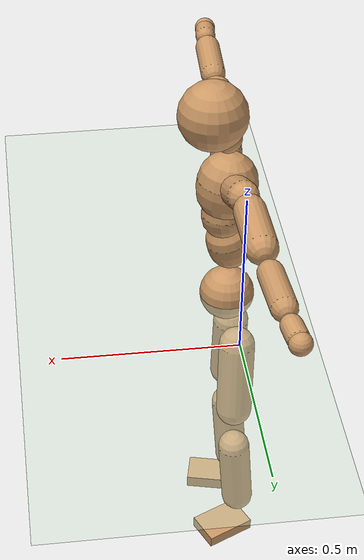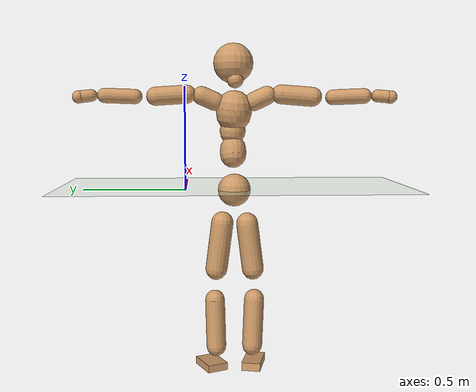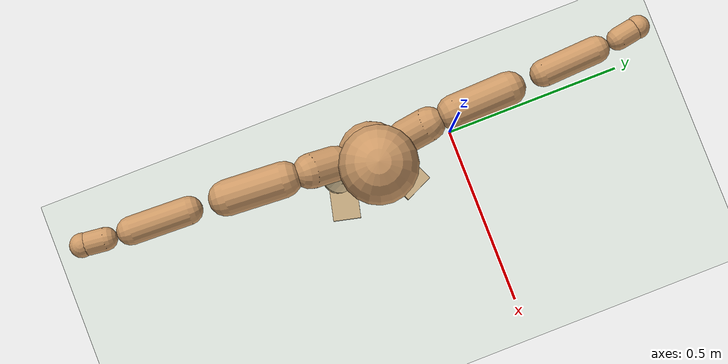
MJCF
<mujoco model="humanoid">
  <compiler coordinate="local" angle="radian"/>
  <default>
    <joint damping="0.0" armature="0.01" stiffness="0.0" limited="true"/>
    <geom conaffinity="1" condim="3" contype="7" margin="0.001" rgba="0.8 0.6 .4 1"/>
  </default>
  <asset>
    <texture type="skybox" builtin="gradient" rgb1=".4 .5 .6" rgb2="0 0 0" width="100" height="100"/>
    <texture builtin="flat" height="1278" mark="cross" markrgb="1 1 1" name="texgeom" random="0.01" rgb1="0.8 0.6 0.4" rgb2="0.8 0.6 0.4" type="cube" width="127"/>
    <texture builtin="checker" height="100" name="texplane" rgb1="0 0 0" rgb2="0.8 0.8 0.8" type="2d" width="100"/>
    <material name="MatPlane" reflectance="0.5" shininess="1" specular="1" texrepeat="60 60" texture="texplane"/>
    <material name="geom" texture="texgeom" texuniform="true"/>
  </asset>
  <worldbody>
    <light cutoff="100" diffuse="1 1 1" dir="-0 0 -1.3" directional="true" exponent="1" pos="0 0 1.3" specular=".1 .1 .1"/>
    <geom conaffinity="1" condim="3" name="floor" pos="0 0 0" rgba="0.8 0.9 0.8 1" size="100 100 .2" type="plane" material="MatPlane"/>
    <body name="Pelvis" pos="0.0003 -0.2376 -0.0015">
      <freejoint name="Pelvis"/>
      <geom type="sphere" contype="1" conaffinity="1" density="500" size="0.0800" pos="0.0000 0.0000 0.0000" name="Pelvis"/>
      <body name="L_Hip" pos="-0.0281 0.0502 -0.0795">
        <joint name="L_Hip_x" type="hinge" pos="0 0 0" axis="1 0 0" stiffness="800" damping="80" armature="0.02" range="-180.0000 180.0000"/>
        <joint name="L_Hip_y" type="hinge" pos="0 0 0" axis="0 1 0" stiffness="800" damping="80" armature="0.02" range="-180.0000 180.0000"/>
        <joint name="L_Hip_z" type="hinge" pos="0 0 0" axis="0 0 1" stiffness="800" damping="80" armature="0.02" range="-180.0000 180.0000"/>
        <geom type="capsule" contype="1" conaffinity="1" density="500" fromto="0.0021 0.0098 -0.0780 0.0082 0.0391 -0.3120" size="0.0538" name="L_Hip"/>
        <body name="L_Knee" pos="0.0103 0.0489 -0.39">
          <joint name="L_Knee_x" type="hinge" pos="0 0 0" axis="1 0 0" stiffness="800" damping="80" armature="0.02" range="-180.0000 180.0000"/>
          <joint name="L_Knee_y" type="hinge" pos="0 0 0" axis="0 1 0" stiffness="800" damping="80" armature="0.02" range="-180.0000 180.0000"/>
          <joint name="L_Knee_z" type="hinge" pos="0 0 0" axis="0 0 1" stiffness="800" damping="80" armature="0.02" range="-180.0000 180.0000"/>
          <geom type="capsule" contype="1" conaffinity="1" density="500" fromto="-0.0064 -0.0020 -0.0785 -0.0255 -0.0079 -0.3139" size="0.0483" name="L_Knee"/>
          <body name="L_Ankle" pos="-0.0319 -0.0099 -0.3924">
            <joint name="L_Ankle_x" type="hinge" pos="0 0 0" axis="1 0 0" stiffness="800" damping="80" armature="0.02" range="-180.0000 180.0000"/>
            <joint name="L_Ankle_y" type="hinge" pos="0 0 0" axis="0 1 0" stiffness="800" damping="80" armature="0.02" range="-180.0000 180.0000"/>
            <joint name="L_Ankle_z" type="hinge" pos="0 0 0" axis="0 0 1" stiffness="800" damping="80" armature="0.02" range="-180.0000 180.0000"/>
            <geom type="box" contype="1" conaffinity="1" density="500" pos="0.0551 0.0251 -0.0288" size="0.0764 0.0524 0.0182" quat="0.9773 0.0000 0.0000 0.2119" name="L_Ankle"/>
            <body name="L_Toe" pos="0.1102 0.0501 -0.0575">
              <joint name="L_Toe_x" type="hinge" pos="0 0 0" axis="1 0 0" stiffness="500" damping="50" armature="0.02" range="-180.0000 180.0000"/>
              <joint name="L_Toe_y" type="hinge" pos="0 0 0" axis="0 1 0" stiffness="500" damping="50" armature="0.02" range="-180.0000 180.0000"/>
              <joint name="L_Toe_z" type="hinge" pos="0 0 0" axis="0 0 1" stiffness="500" damping="50" armature="0.02" range="-180.0000 180.0000"/>
              <geom type="box" contype="1" conaffinity="1" density="500" pos="0.0000 0.0000 0.0316" size="0.001 0.0024 0.0011" quat="0.9764 0.0000 0.0000 0.2158" name="L_Toe"/>
            </body>
          </body>
        </body>
      </body>
      <body name="R_Hip" pos="-0.027 -0.0522 -0.0865">
        <joint name="R_Hip_x" type="hinge" pos="0 0 0" axis="1 0 0" stiffness="800" damping="80" armature="0.02" range="-180.0000 180.0000"/>
        <joint name="R_Hip_y" type="hinge" pos="0 0 0" axis="0 1 0" stiffness="800" damping="80" armature="0.02" range="-180.0000 180.0000"/>
        <joint name="R_Hip_z" type="hinge" pos="0 0 0" axis="0 0 1" stiffness="800" damping="80" armature="0.02" range="-180.0000 180.0000"/>
        <geom type="capsule" contype="1" conaffinity="1" density="500" fromto="-0.0002 -0.0097 -0.0761 -0.0008 -0.0389 -0.3045" size="0.053" name="R_Hip"/>
        <body name="R_Knee" pos="-0.001 -0.0486 -0.3806">
          <joint name="R_Knee_x" type="hinge" pos="0 0 0" axis="1 0 0" stiffness="800" damping="80" armature="0.02" range="-180.0000 180.0000"/>
          <joint name="R_Knee_y" type="hinge" pos="0 0 0" axis="0 1 0" stiffness="800" damping="80" armature="0.02" range="-180.0000 180.0000"/>
          <joint name="R_Knee_z" type="hinge" pos="0 0 0" axis="0 0 1" stiffness="800" damping="80" armature="0.02" range="-180.0000 180.0000"/>
          <geom type="capsule" contype="1" conaffinity="1" density="500" fromto="-0.0059 0.0033 -0.0773 -0.0235 0.0130 -0.3092" size="0.0492" name="R_Knee"/>
          <body name="R_Ankle" pos="-0.0293 0.0163 -0.3865">
            <joint name="R_Ankle_x" type="hinge" pos="0 0 0" axis="1 0 0" stiffness="800" damping="80" armature="0.02" range="-180.0000 180.0000"/>
            <joint name="R_Ankle_y" type="hinge" pos="0 0 0" axis="0 1 0" stiffness="800" damping="80" armature="0.02" range="-180.0000 180.0000"/>
            <joint name="R_Ankle_z" type="hinge" pos="0 0 0" axis="0 0 1" stiffness="800" damping="80" armature="0.02" range="-180.0000 180.0000"/>
            <geom type="box" contype="1" conaffinity="1" density="500" pos="0.0598 -0.0142 -0.0304" size="0.0839 0.0466 0.0203" quat="0.9932 0.0000 0.0000 -0.1167" name="R_Ankle"/>
            <body name="R_Toe" pos="0.1196 -0.0285 -0.0609">
              <joint name="R_Toe_x" type="hinge" pos="0 0 0" axis="1 0 0" stiffness="500" damping="50" armature="0.02" range="-180.0000 180.0000"/>
              <joint name="R_Toe_y" type="hinge" pos="0 0 0" axis="0 1 0" stiffness="500" damping="50" armature="0.02" range="-180.0000 180.0000"/>
              <joint name="R_Toe_z" type="hinge" pos="0 0 0" axis="0 0 1" stiffness="500" damping="50" armature="0.02" range="-180.0000 180.0000"/>
              <geom type="box" contype="1" conaffinity="1" density="500" pos="0.0000 0.0000 0.0332" size="0.0009 0.0022 0.0012" quat="0.9943 0.0000 0.0000 -0.1071" name="R_Toe"/>
            </body>
          </body>
        </body>
      </body>
      <body name="Torso" pos="-0.0169 0.0037 0.1153">
        <joint name="Torso_x" type="hinge" pos="0 0 0" axis="1 0 0" stiffness="1000" damping="100" armature="0.02" range="-180.0000 180.0000"/>
        <joint name="Torso_y" type="hinge" pos="0 0 0" axis="0 1 0" stiffness="1000" damping="100" armature="0.02" range="-180.0000 180.0000"/>
        <joint name="Torso_z" type="hinge" pos="0 0 0" axis="0 0 1" stiffness="1000" damping="100" armature="0.02" range="-180.0000 180.0000"/>
        <geom type="capsule" contype="1" conaffinity="1" density="500" fromto="0.0218 0.0028 0.0872 0.0145 0.0018 0.0581" size="0.0629" name="Torso"/>
        <body name="Spine" pos="0.0363 0.0046 0.1453">
          <joint name="Spine_x" type="hinge" pos="0 0 0" axis="1 0 0" stiffness="1000" damping="100" armature="0.02" range="-180.0000 180.0000"/>
          <joint name="Spine_y" type="hinge" pos="0 0 0" axis="0 1 0" stiffness="1000" damping="100" armature="0.02" range="-180.0000 180.0000"/>
          <joint name="Spine_z" type="hinge" pos="0 0 0" axis="0 0 1" stiffness="1000" damping="100" armature="0.02" range="-180.0000 180.0000"/>
          <geom type="capsule" contype="1" conaffinity="1" density="500" fromto="0.0007 -0.0012 0.0346 0.0005 -0.0008 0.0231" size="0.0625" name="Spine"/>
          <body name="Chest" pos="0.0011 -0.0021 0.0577">
            <joint name="Chest_x" type="hinge" pos="0 0 0" axis="1 0 0" stiffness="1000" damping="100" armature="0.02" range="-180.0000 180.0000"/>
            <joint name="Chest_y" type="hinge" pos="0 0 0" axis="0 1 0" stiffness="1000" damping="100" armature="0.02" range="-180.0000 180.0000"/>
            <joint name="Chest_z" type="hinge" pos="0 0 0" axis="0 0 1" stiffness="1000" damping="100" armature="0.02" range="-180.0000 180.0000"/>
            <geom type="capsule" contype="1" conaffinity="1" density="500" fromto="-0.0108 -0.0054 0.0800 -0.0072 -0.0036 0.0533" size="0.086" name="Chest"/>
            <body name="Neck" pos="-0.0186 -0.0127 0.1956">
              <joint name="Neck_x" type="hinge" pos="0 0 0" axis="1 0 0" stiffness="500" damping="50" armature="0.02" range="-180.0000 180.0000"/>
              <joint name="Neck_y" type="hinge" pos="0 0 0" axis="0 1 0" stiffness="500" damping="50" armature="0.02" range="-180.0000 180.0000"/>
              <joint name="Neck_z" type="hinge" pos="0 0 0" axis="0 0 1" stiffness="500" damping="50" armature="0.02" range="-180.0000 180.0000"/>
              <geom type="capsule" contype="1" conaffinity="1" density="500" fromto="0.0109 0.0018 0.0203 0.0435 0.0072 0.0811" size="0.0402" name="Neck"/>
              <body name="Head" pos="0.0544 0.009 0.1013">
                <joint name="Head_x" type="hinge" pos="0 0 0" axis="1 0 0" stiffness="500" damping="50" armature="0.02" range="-180.0000 180.0000"/>
                <joint name="Head_y" type="hinge" pos="0 0 0" axis="0 1 0" stiffness="500" damping="50" armature="0.02" range="-180.0000 180.0000"/>
                <joint name="Head_z" type="hinge" pos="0 0 0" axis="0 0 1" stiffness="500" damping="50" armature="0.02" range="-180.0000 180.0000"/>
                <geom type="sphere" contype="1" conaffinity="1" density="500" size="0.0973" pos="0.0000 0.0000 0.0000" name="Head"/>
              </body>
            </body>
            <body name="L_Thorax" pos="-0.0161 0.0654 0.1023">
              <joint name="L_Thorax_x" type="hinge" pos="0 0 0" axis="1 0 0" stiffness="500" damping="50" armature="0.02" range="-180.0000 180.0000"/>
              <joint name="L_Thorax_y" type="hinge" pos="0 0 0" axis="0 1 0" stiffness="500" damping="50" armature="0.02" range="-180.0000 180.0000"/>
              <joint name="L_Thorax_z" type="hinge" pos="0 0 0" axis="0 0 1" stiffness="500" damping="50" armature="0.02" range="-180.0000 180.0000"/>
              <geom type="capsule" contype="1" conaffinity="1" density="500" fromto="-0.0024 0.0217 0.0095 -0.0095 0.0869 0.0379" size="0.0441" name="L_Thorax"/>
              <body name="L_Shoulder" pos="-0.0119 0.1086 0.0474">
                <joint name="L_Shoulder_x" type="hinge" pos="0 0 0" axis="1 0 0" stiffness="500" damping="50" armature="0.02" range="-720.0000 720.0000"/>
                <joint name="L_Shoulder_y" type="hinge" pos="0 0 0" axis="0 1 0" stiffness="500" damping="50" armature="0.02" range="-720.0000 720.0000"/>
                <joint name="L_Shoulder_z" type="hinge" pos="0 0 0" axis="0 0 1" stiffness="500" damping="50" armature="0.02" range="-720.0000 720.0000"/>
                <geom type="capsule" contype="1" conaffinity="1" density="500" fromto="-0.0021 0.0495 -0.0034 -0.0082 0.1979 -0.0135" size="0.0441" name="L_Shoulder"/>
                <body name="L_Elbow" pos="-0.0103 0.2474 -0.0169">
                  <joint name="L_Elbow_x" type="hinge" pos="0 0 0" axis="1 0 0" stiffness="500" damping="50" armature="0.02" range="-720.0000 720.0000"/>
                  <joint name="L_Elbow_y" type="hinge" pos="0 0 0" axis="0 1 0" stiffness="500" damping="50" armature="0.02" range="-720.0000 720.0000"/>
                  <joint name="L_Elbow_z" type="hinge" pos="0 0 0" axis="0 0 1" stiffness="500" damping="50" armature="0.02" range="-720.0000 720.0000"/>
                  <geom type="capsule" contype="1" conaffinity="1" density="500" fromto="-0.0025 0.0474 0.0017 -0.0098 0.1898 0.0068" size="0.035" name="L_Elbow"/>
                  <body name="L_Wrist" pos="-0.0123 0.2372 0.0085">
                    <joint name="L_Wrist_x" type="hinge" pos="0 0 0" axis="1 0 0" stiffness="300" damping="30" armature="0.02" range="-180.0000 180.0000"/>
                    <joint name="L_Wrist_y" type="hinge" pos="0 0 0" axis="0 1 0" stiffness="300" damping="30" armature="0.02" range="-180.0000 180.0000"/>
                    <joint name="L_Wrist_z" type="hinge" pos="0 0 0" axis="0 0 1" stiffness="300" damping="30" armature="0.02" range="-180.0000 180.0000"/>
                    <geom type="capsule" contype="1" conaffinity="1" density="500" fromto="-0.0027 0.0147 -0.0018 -0.0106 0.0587 -0.0072" size="0.0289" name="L_Wrist"/>
                    <body name="L_Hand" pos="-0.0133 0.0734 -0.009">
                      <joint name="L_Hand_x" type="hinge" pos="0 0 0" axis="1 0 0" stiffness="300" damping="30" armature="0.02" range="-180.0000 180.0000"/>
                      <joint name="L_Hand_y" type="hinge" pos="0 0 0" axis="0 1 0" stiffness="300" damping="30" armature="0.02" range="-180.0000 180.0000"/>
                      <joint name="L_Hand_z" type="hinge" pos="0 0 0" axis="0 0 1" stiffness="300" damping="30" armature="0.02" range="-180.0000 180.0000"/>
                      <geom type="sphere" contype="1" conaffinity="1" density="500" size="0.0302" pos="0.0000 0.0000 0.0000" name="L_Hand"/>
                    </body>
                  </body>
                </body>
              </body>
            </body>
            <body name="R_Thorax" pos="-0.0195 -0.0798 0.1021">
              <joint name="R_Thorax_x" type="hinge" pos="0 0 0" axis="1 0 0" stiffness="500" damping="50" armature="0.02" range="-180.0000 180.0000"/>
              <joint name="R_Thorax_y" type="hinge" pos="0 0 0" axis="0 1 0" stiffness="500" damping="50" armature="0.02" range="-180.0000 180.0000"/>
              <joint name="R_Thorax_z" type="hinge" pos="0 0 0" axis="0 0 1" stiffness="500" damping="50" armature="0.02" range="-180.0000 180.0000"/>
              <geom type="capsule" contype="1" conaffinity="1" density="500" fromto="-0.0006 -0.0207 0.0096 -0.0025 -0.0830 0.0386" size="0.0453" name="R_Thorax"/>
              <body name="R_Shoulder" pos="-0.0031 -0.1037 0.0482">
                <joint name="R_Shoulder_x" type="hinge" pos="0 0 0" axis="1 0 0" stiffness="500" damping="50" armature="0.02" range="-720.0000 720.0000"/>
                <joint name="R_Shoulder_y" type="hinge" pos="0 0 0" axis="0 1 0" stiffness="500" damping="50" armature="0.02" range="-720.0000 720.0000"/>
                <joint name="R_Shoulder_z" type="hinge" pos="0 0 0" axis="0 0 1" stiffness="500" damping="50" armature="0.02" range="-720.0000 720.0000"/>
                <geom type="capsule" contype="1" conaffinity="1" density="500" fromto="-0.0034 -0.0495 -0.0041 -0.0134 -0.1982 -0.0163" size="0.0465" name="R_Shoulder"/>
                <body name="R_Elbow" pos="-0.0168 -0.2477 -0.0204">
                  <joint name="R_Elbow_x" type="hinge" pos="0 0 0" axis="1 0 0" stiffness="500" damping="50" armature="0.02" range="-720.0000 720.0000"/>
                  <joint name="R_Elbow_y" type="hinge" pos="0 0 0" axis="0 1 0" stiffness="500" damping="50" armature="0.02" range="-720.0000 720.0000"/>
                  <joint name="R_Elbow_z" type="hinge" pos="0 0 0" axis="0 0 1" stiffness="500" damping="50" armature="0.02" range="-720.0000 720.0000"/>
                  <geom type="capsule" contype="1" conaffinity="1" density="500" fromto="-0.0015 -0.0501 0.0021 -0.0059 -0.2004 0.0083" size="0.0365" name="R_Elbow"/>
                  <body name="R_Wrist" pos="-0.0074 -0.2505 0.0103">
                    <joint name="R_Wrist_x" type="hinge" pos="0 0 0" axis="1 0 0" stiffness="300" damping="30" armature="0.02" range="-180.0000 180.0000"/>
                    <joint name="R_Wrist_y" type="hinge" pos="0 0 0" axis="0 1 0" stiffness="300" damping="30" armature="0.02" range="-180.0000 180.0000"/>
                    <joint name="R_Wrist_z" type="hinge" pos="0 0 0" axis="0 0 1" stiffness="300" damping="30" armature="0.02" range="-180.0000 180.0000"/>
                    <geom type="capsule" contype="1" conaffinity="1" density="500" fromto="-0.0018 -0.0154 -0.0014 -0.0072 -0.0618 -0.0057" size="0.03" name="R_Wrist"/>
                    <body name="R_Hand" pos="-0.009 -0.0772 -0.0071">
                      <joint name="R_Hand_x" type="hinge" pos="0 0 0" axis="1 0 0" stiffness="300" damping="30" armature="0.02" range="-180.0000 180.0000"/>
                      <joint name="R_Hand_y" type="hinge" pos="0 0 0" axis="0 1 0" stiffness="300" damping="30" armature="0.02" range="-180.0000 180.0000"/>
                      <joint name="R_Hand_z" type="hinge" pos="0 0 0" axis="0 0 1" stiffness="300" damping="30" armature="0.02" range="-180.0000 180.0000"/>
                      <geom type="sphere" contype="1" conaffinity="1" density="500" size="0.0314" pos="0.0000 0.0000 0.0000" name="R_Hand"/>
                    </body>
                  </body>
                </body>
              </body>
            </body>
          </body>
        </body>
      </body>
    </body>
  </worldbody>
  <actuator>
    <motor name="L_Hip_x" joint="L_Hip_x" gear="500"/>
    <motor name="L_Hip_y" joint="L_Hip_y" gear="500"/>
    <motor name="L_Hip_z" joint="L_Hip_z" gear="500"/>
    <motor name="L_Knee_x" joint="L_Knee_x" gear="500"/>
    <motor name="L_Knee_y" joint="L_Knee_y" gear="500"/>
    <motor name="L_Knee_z" joint="L_Knee_z" gear="500"/>
    <motor name="L_Ankle_x" joint="L_Ankle_x" gear="500"/>
    <motor name="L_Ankle_y" joint="L_Ankle_y" gear="500"/>
    <motor name="L_Ankle_z" joint="L_Ankle_z" gear="500"/>
    <motor name="L_Toe_x" joint="L_Toe_x" gear="500"/>
    <motor name="L_Toe_y" joint="L_Toe_y" gear="500"/>
    <motor name="L_Toe_z" joint="L_Toe_z" gear="500"/>
    <motor name="R_Hip_x" joint="R_Hip_x" gear="500"/>
    <motor name="R_Hip_y" joint="R_Hip_y" gear="500"/>
    <motor name="R_Hip_z" joint="R_Hip_z" gear="500"/>
    <motor name="R_Knee_x" joint="R_Knee_x" gear="500"/>
    <motor name="R_Knee_y" joint="R_Knee_y" gear="500"/>
    <motor name="R_Knee_z" joint="R_Knee_z" gear="500"/>
    <motor name="R_Ankle_x" joint="R_Ankle_x" gear="500"/>
    <motor name="R_Ankle_y" joint="R_Ankle_y" gear="500"/>
    <motor name="R_Ankle_z" joint="R_Ankle_z" gear="500"/>
    <motor name="R_Toe_x" joint="R_Toe_x" gear="500"/>
    <motor name="R_Toe_y" joint="R_Toe_y" gear="500"/>
    <motor name="R_Toe_z" joint="R_Toe_z" gear="500"/>
    <motor name="Torso_x" joint="Torso_x" gear="500"/>
    <motor name="Torso_y" joint="Torso_y" gear="500"/>
    <motor name="Torso_z" joint="Torso_z" gear="500"/>
    <motor name="Spine_x" joint="Spine_x" gear="500"/>
    <motor name="Spine_y" joint="Spine_y" gear="500"/>
    <motor name="Spine_z" joint="Spine_z" gear="500"/>
    <motor name="Chest_x" joint="Chest_x" gear="500"/>
    <motor name="Chest_y" joint="Chest_y" gear="500"/>
    <motor name="Chest_z" joint="Chest_z" gear="500"/>
    <motor name="Neck_x" joint="Neck_x" gear="500"/>
    <motor name="Neck_y" joint="Neck_y" gear="500"/>
    <motor name="Neck_z" joint="Neck_z" gear="500"/>
    <motor name="Head_x" joint="Head_x" gear="500"/>
    <motor name="Head_y" joint="Head_y" gear="500"/>
    <motor name="Head_z" joint="Head_z" gear="500"/>
    <motor name="L_Thorax_x" joint="L_Thorax_x" gear="500"/>
    <motor name="L_Thorax_y" joint="L_Thorax_y" gear="500"/>
    <motor name="L_Thorax_z" joint="L_Thorax_z" gear="500"/>
    <motor name="L_Shoulder_x" joint="L_Shoulder_x" gear="500"/>
    <motor name="L_Shoulder_y" joint="L_Shoulder_y" gear="500"/>
    <motor name="L_Shoulder_z" joint="L_Shoulder_z" gear="500"/>
    <motor name="L_Elbow_x" joint="L_Elbow_x" gear="500"/>
    <motor name="L_Elbow_y" joint="L_Elbow_y" gear="500"/>
    <motor name="L_Elbow_z" joint="L_Elbow_z" gear="500"/>
    <motor name="L_Wrist_x" joint="L_Wrist_x" gear="500"/>
    <motor name="L_Wrist_y" joint="L_Wrist_y" gear="500"/>
    <motor name="L_Wrist_z" joint="L_Wrist_z" gear="500"/>
    <motor name="L_Hand_x" joint="L_Hand_x" gear="500"/>
    <motor name="L_Hand_y" joint="L_Hand_y" gear="500"/>
    <motor name="L_Hand_z" joint="L_Hand_z" gear="500"/>
    <motor name="R_Thorax_x" joint="R_Thorax_x" gear="500"/>
    <motor name="R_Thorax_y" joint="R_Thorax_y" gear="500"/>
    <motor name="R_Thorax_z" joint="R_Thorax_z" gear="500"/>
    <motor name="R_Shoulder_x" joint="R_Shoulder_x" gear="500"/>
    <motor name="R_Shoulder_y" joint="R_Shoulder_y" gear="500"/>
    <motor name="R_Shoulder_z" joint="R_Shoulder_z" gear="500"/>
    <motor name="R_Elbow_x" joint="R_Elbow_x" gear="500"/>
    <motor name="R_Elbow_y" joint="R_Elbow_y" gear="500"/>
    <motor name="R_Elbow_z" joint="R_Elbow_z" gear="500"/>
    <motor name="R_Wrist_x" joint="R_Wrist_x" gear="500"/>
    <motor name="R_Wrist_y" joint="R_Wrist_y" gear="500"/>
    <motor name="R_Wrist_z" joint="R_Wrist_z" gear="500"/>
    <motor name="R_Hand_x" joint="R_Hand_x" gear="500"/>
    <motor name="R_Hand_y" joint="R_Hand_y" gear="500"/>
    <motor name="R_Hand_z" joint="R_Hand_z" gear="500"/>
  </actuator>
  <contact>
    <exclude body1="Torso" body2="Chest"/>
    <exclude body1="Head" body2="Chest"/>
    <exclude body1="R_Knee" body2="R_Toe"/>
    <exclude body1="R_Knee" body2="L_Ankle"/>
    <exclude body1="R_Knee" body2="L_Toe"/>
    <exclude body1="L_Knee" body2="L_Toe"/>
    <exclude body1="L_Knee" body2="R_Ankle"/>
    <exclude body1="L_Knee" body2="R_Toe"/>
    <exclude body1="L_Shoulder" body2="Chest"/>
    <exclude body1="R_Shoulder" body2="Chest"/>
  </contact>
  <sensor/>
  <size njmax="700" nconmax="700"/>
</mujoco>
